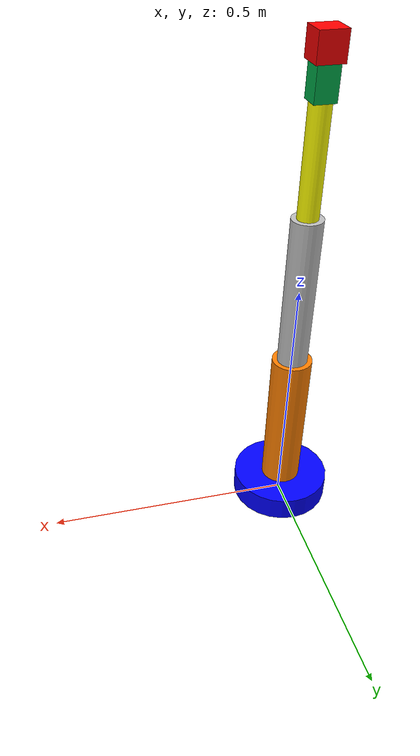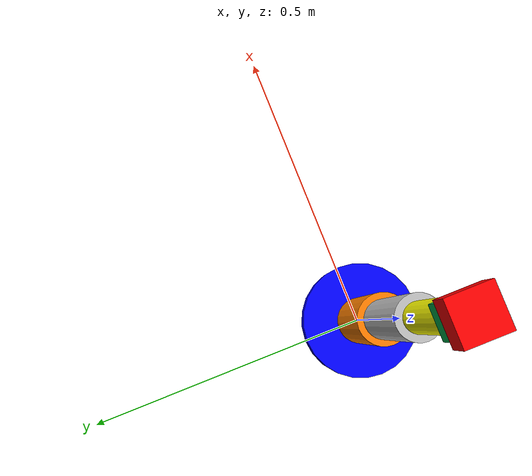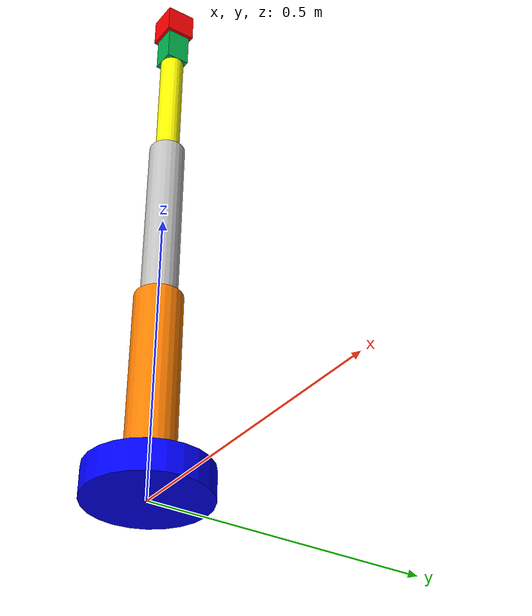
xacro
<?xml version="1.0"?>
<robot name="dum_e" xmlns:xacro="http://www.ros.org/wiki/xacro">

<!-- ===== Dimensions(m). Change sizes here only. ===== -->
  <xacro:property name="base_plate_length" value="0.05"/>
  <xacro:property name="base_plate_radius" value="0.1"/>

  <xacro:property name="column_length" value="0.3"/>
  <xacro:property name="column_radius" value="0.04"/>
  <xacro:property name="column_mass"   value="0.40"/>   <!-- TODO: real mass -->

  <xacro:property name="upper_arm_length" value="0.3"/>
  <xacro:property name="upper_arm_radius" value="0.03"/>
  <xacro:property name="upper_arm_mass"   value="0.25"/>   <!-- TODO: real mass -->

  <xacro:property name="forearm_length" value="0.2"/>
  <xacro:property name="forearm_radius" value="0.02"/>
  <xacro:property name="forearm_mass"   value="0.15"/>   <!-- TODO: real mass -->

  <xacro:property name="wrist_bracket_size_x" value="0.04"/>
  <xacro:property name="wrist_bracket_size_y" value="0.04"/>
  <xacro:property name="wrist_bracket_length" value="0.06"/>
  <xacro:property name="wrist_bracket_mass" value="0.06"/>   <!-- TODO: real mass -->

  <xacro:property name="mount_size_x" value="0.05"/>
  <xacro:property name="mount_size_y" value="0.05"/>
  <xacro:property name="mount_length" value="0.05"/>
  <xacro:property name="mount_mass"         value="0.08"/>   <!-- TODO: real mass -->

  <xacro:macro name="cylinder_inertial" params="mass radius length">
  <inertial>
      <origin xyz="0 0 ${length / 2}" rpy="0 0 0"/>
      <mass value="${mass}"/>
      <!-- Solid cylinder about its centre: Ixx = Iyy = m(3r^2 + l^2)/12, Izz = m r^2/2 -->
      <inertia ixx="${mass * (3 * radius**2 + length**2) / 12}" ixy="0" ixz="0"
               iyy="${mass * (3 * radius**2 + length**2) / 12}" iyz="0"
               izz="${mass * radius**2 / 2}"/>
    </inertial>
  </xacro:macro>

  <xacro:macro name="box_inertial" params="mass x y z">
  <inertial>
      <origin xyz="0 0 ${z / 2}" rpy="0 0 0"/>
      <mass value="${mass}"/>
      <!-- Solid box about its centre: Ixx = m × (y² + z²) / 12, Iyy = m × (x² + z²) / 12, Izz = m × (x² + y²) / 12 -->
      <inertia ixx="${mass * (y**2 + z**2) / 12}" ixy="0" ixz="0"
               iyy="${mass * (x**2 + z**2) / 12}" iyz="0"
               izz="${mass * (x**2 + y**2) / 12}"/>
    </inertial>
  </xacro:macro>

  <!-- ===== Materials ===== -->
  <material name="blue">   <color rgba="0 0 1 1"/>          </material>
  <material name="orange"> <color rgba="1 0.5 0 1"/>        </material>
  <material name="silver"> <color rgba="0.75 0.75 0.75 1"/> </material>
  <material name="yellow"> <color rgba="1 1 0 1"/>          </material>
  <material name="green">  <color rgba="0 0.7 0.3 1"/>      </material>
  <material name="red">    <color rgba="1 0 0 1"/>          </material>

  <!-- ===== base_link: base plate. Origin = bottom-centre (mounting surface, ADR-004).
       No inertial: fixed to the world (ADR-006). ===== -->
  <link name="base_link">
    <visual>
      <origin xyz="0 0 ${base_plate_length / 2}" rpy="0 0 0"/>
      <geometry><cylinder length="${base_plate_length}" radius="${base_plate_radius}"/></geometry>
      <material name="blue"/>
    </visual>
    <collision>
      <origin xyz="0 0 ${base_plate_length / 2}" rpy="0 0 0"/>
      <geometry><cylinder length="${base_plate_length}" radius="${base_plate_radius}"/></geometry>
    </collision>
  </link>

  <!-- ===== J1: base yaw. Positive = counter-clockwise seen from above. ===== -->
  <joint name="base_yaw_joint" type="revolute">
    <parent link="base_link"/>
    <child link="shoulder_link"/>
    <origin xyz="0 0 ${base_plate_length}" rpy="0 0 0"/>
    <axis xyz="0 0 1"/>
    <limit lower="-3.14159" upper="3.14159" effort="2.0" velocity="1.0"/>  <!-- TODO: stepper datasheet -->
  </joint>

  <!-- ===== shoulder_link: rotating column ===== -->
  <link name="shoulder_link">
    <visual>
      <origin xyz="0 0 ${column_length / 2}" rpy="0 0 0"/>
      <geometry><cylinder length="${column_length}" radius="${column_radius}"/></geometry>
      <material name="orange"/>
    </visual>
    <collision>
      <origin xyz="0 0 ${column_length / 2}" rpy="0 0 0"/>
      <geometry><cylinder length="${column_length}" radius="${column_radius}"/></geometry>
    </collision>
    <xacro:cylinder_inertial mass="${column_mass}" radius="${column_radius}" length="${column_length}"/>
  </link>

  <!-- ===== J2: shoulder pitch. Positive tips the arm toward +X. ===== -->
  <joint name="shoulder_pitch_joint" type="revolute">
    <parent link="shoulder_link"/>
    <child link="upper_arm_link"/>
    <origin xyz="0 0 ${column_length}" rpy="0 0 0"/>
    <axis xyz="0 1 0"/>
    <limit lower="-2.0944" upper="2.0944" effort="4.0" velocity="1.0"/>  <!-- +/-120 deg, see kinematics.md section 6. TODO: geared NEMA 17 -->
  </joint>

  <!-- ===== upper_arm_link ===== -->
  <link name="upper_arm_link">
    <visual>
      <origin xyz="0 0 ${upper_arm_length / 2}" rpy="0 0 0"/>
      <geometry><cylinder length="${upper_arm_length}" radius="${upper_arm_radius}"/></geometry>
      <material name="silver"/>
    </visual>
    <collision>
      <origin xyz="0 0 ${upper_arm_length / 2}" rpy="0 0 0"/>
      <geometry><cylinder length="${upper_arm_length}" radius="${upper_arm_radius}"/></geometry>
    </collision>
    <xacro:cylinder_inertial mass="${upper_arm_mass}" radius="${upper_arm_radius}" length="${upper_arm_length}"/>
  </link>

  <!-- ===== J3: elbow pitch ===== -->
  <joint name="elbow_pitch_joint" type="revolute">
    <parent link="upper_arm_link"/>
    <child link="forearm_link"/>
    <origin xyz="0 0 ${upper_arm_length}" rpy="0 0 0"/>
    <axis xyz="0 1 0"/>
    <limit lower="-2.3562" upper="2.3562" effort="2.0" velocity="1.0"/>  <!-- +/-135 deg, see kinematics.md section 6 -->
  </joint>

  <!-- ===== forearm_link ===== -->
  <link name="forearm_link">
    <visual>
      <origin xyz="0 0 ${forearm_length / 2}" rpy="0 0 0"/>
      <geometry><cylinder length="${forearm_length}" radius="${forearm_radius}"/></geometry>
      <material name="yellow"/>
    </visual>
    <collision>
      <origin xyz="0 0 ${forearm_length / 2}" rpy="0 0 0"/>
      <geometry><cylinder length="${forearm_length}" radius="${forearm_radius}"/></geometry>
    </collision>
    <xacro:cylinder_inertial mass="${forearm_mass}" radius="${forearm_radius}" length="${forearm_length}"/>
  </link>

  <!-- ===== J4: wrist pitch (sets the approach angle). Servo: 180 deg range. ===== -->
  <joint name="wrist_pitch_joint" type="revolute">
    <parent link="forearm_link"/>
    <child link="wrist_pitch_link"/>
    <origin xyz="0 0 ${forearm_length}" rpy="0 0 0"/>
    <axis xyz="0 1 0"/>
    <limit lower="-1.5708" upper="1.5708" effort="1.0" velocity="3.0"/>  <!-- TODO: servo datasheet -->
  </joint>

  <!-- ===== wrist_pitch_link: short bracket between the two wrist servos ===== -->
  <link name="wrist_pitch_link">
    <visual>
      <origin xyz="0 0 ${wrist_bracket_length / 2}" rpy="0 0 0"/>
      <geometry><box size="${wrist_bracket_size_x} ${wrist_bracket_size_y} ${wrist_bracket_length}"/></geometry>
      <material name="green"/>
    </visual>
    <collision>
      <origin xyz="0 0 ${wrist_bracket_length / 2}" rpy="0 0 0"/>
      <geometry><box size="${wrist_bracket_size_x} ${wrist_bracket_size_y} ${wrist_bracket_length}"/></geometry>
    </collision>
    <xacro:box_inertial mass="${wrist_bracket_mass}" x="${wrist_bracket_size_x}" y="${wrist_bracket_size_y}" z="${wrist_bracket_length}"/>
  </link>

  <!-- ===== J5: wrist roll, about the tool's own axis (local Z). Servo: 180 deg range. ===== -->
  <joint name="wrist_roll_joint" type="revolute">
    <parent link="wrist_pitch_link"/>
    <child link="wrist_roll_link"/>
    <origin xyz="0 0 ${wrist_bracket_length}" rpy="0 0 0"/>
    <axis xyz="0 0 1"/>
    <limit lower="-1.5708" upper="1.5708" effort="0.5" velocity="3.0"/>  <!-- TODO: servo datasheet -->
  </joint>

  <!-- ===== wrist_roll_link: tool mount ===== -->
  <link name="wrist_roll_link">
    <visual>
      <origin xyz="0 0 ${mount_length / 2}" rpy="0 0 0"/>
      <geometry><box size="${mount_size_x} ${mount_size_y} ${mount_length}"/></geometry>
      <material name="red"/>
    </visual>
    <collision>
      <origin xyz="0 0 ${mount_length / 2}" rpy="0 0 0"/>
      <geometry><box size="${mount_size_x} ${mount_size_y} ${mount_length}"/></geometry>
    </collision>
    <xacro:box_inertial mass="${mount_mass}" x="${mount_size_x}" y="${mount_size_y}" z="${mount_length}"/>
  </link>

  <!-- ===== tool0: planning tip on the tool-mount face (ADR-005).
       Move to the fingertip centre when a gripper is added. ===== -->
  <joint name="tool0_joint" type="fixed">
    <parent link="wrist_roll_link"/>
    <child link="tool0"/>
    <origin xyz="0 0 ${mount_length}" rpy="0 0 0"/>
  </joint>
  <link name="tool0"/>

</robot>
